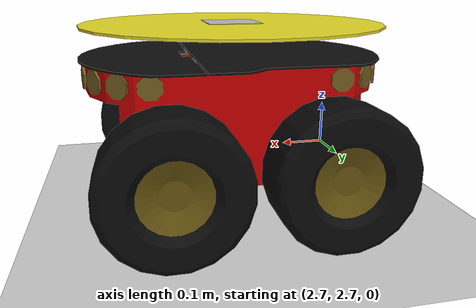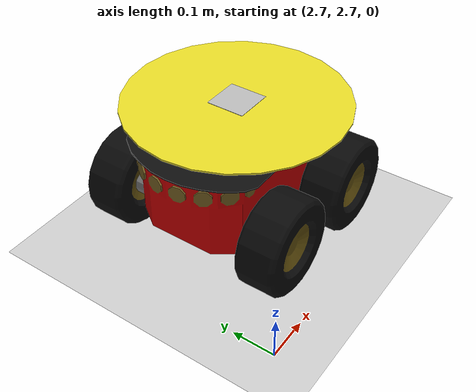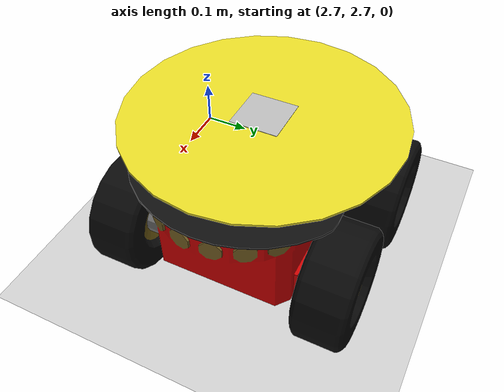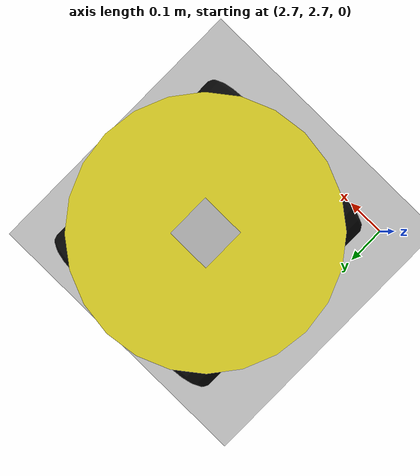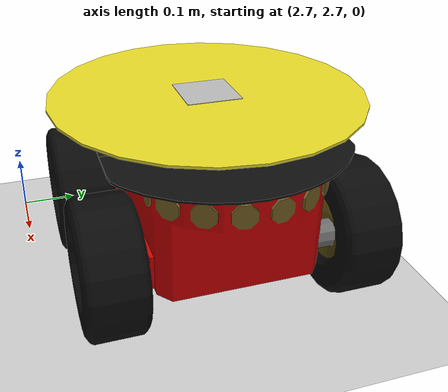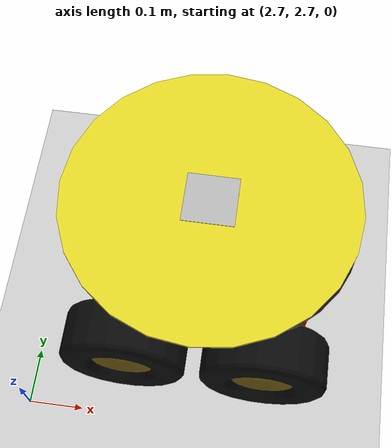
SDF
<?xml version="1.0" ?>
<sdf version="1.6">
  <world name="default">
    <scene>
      <sky>
        <clouds>
          <speed>12</speed>
        </clouds>
      </sky>
    </scene>
    <!-- A global light source -->
    <include>
      <uri>model://sun</uri>
    </include>
    <!-- A ground plane -->
    <include>
      <uri>model://ground_plane</uri>
    </include>
    <include>
      <uri>model://pioneer3at_lander</uri>
      <pose>3 3 0 0 0 0</pose>
    </include>
    <include>
      <uri>model://asphalt_plane</uri>
    </include>
    <physics name='default_physics' default='0' type='ode'>
      <ode>
        <solver>
          <iters>100</iters>
          <sor>1.3</sor>
          <use_dynamic_moi_rescaling>0</use_dynamic_moi_rescaling>
        </solver>
        <constraints>
          <cfm>0</cfm>
          <erp>0.2</erp>
          <contact_max_correcting_vel>100</contact_max_correcting_vel>
          <contact_surface_layer>0.001</contact_surface_layer>
        </constraints>
      </ode>
      <max_step_size>0.001</max_step_size>
      <real_time_factor>1</real_time_factor>
      <real_time_update_rate>1000</real_time_update_rate>
    </physics>
  </world>
</sdf>

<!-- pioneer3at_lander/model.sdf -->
<sdf version="1.4">
  <model name="pioneer3at_lander">

    <include>
      <uri>model://pioneer3at</uri>
      <pose>0 0 0.18 0 0 0</pose>
    </include>

    <include>
      <uri>model://landing_pad</uri>
      <pose>0 0 0.33 0 0 1.57</pose>
    </include>

    <joint name="landing_pad" type="revolute">
      <parent>pioneer3at::chassis</parent>
      <child>landing_pad::landing_pad_link</child>
      <axis>
        <limit>
          <upper>0</upper>
          <lower>0</lower>
        </limit>
      <xyz>0 0 1</xyz>
      </axis>
    </joint>
    <plugin name="skid_steer_drive_controller" filename="libgazebo_ros_skid_steer_drive.so">
      <updateRate>20.0</updateRate>
      <robotNamespace>p3at</robotNamespace>
      <leftFrontJoint>pioneer3at::left_front</leftFrontJoint>
      <rightFrontJoint>pioneer3at::right_front</rightFrontJoint>
      <leftRearJoint>pioneer3at::left_rear</leftRearJoint>
      <rightRearJoint>pioneer3at::right_rear</rightRearJoint>
      <wheelSeparation>0.4</wheelSeparation>
      <wheelDiameter>0.215</wheelDiameter>
      <robotBaseFrame>chassis</robotBaseFrame>
      <torque>500</torque>
      <commandTopic>cmd_vel</commandTopic>
      <odometryTopic>odom</odometryTopic>
      <odometryFrame>odom</odometryFrame>
      <broadcastTF>true</broadcastTF>
    </plugin>

  </model>
</sdf>

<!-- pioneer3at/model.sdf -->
<sdf version="1.5">
  <model name="pioneer3at">
    <pose>0 0 0.180 0 0 0</pose>
    <static>false</static>
    <link name="chassis">
      <inertial>
        <mass>14.0</mass>
        <inertia>
          <ixx>0.147116667</ixx>
          <ixy>0.0</ixy>
          <ixz>0.0</ixz>
          <iyy>0.334951167</iyy>
          <iyz>0.0</iyz>
          <izz>0.3978345</izz>
        </inertia>
      </inertial>
      <collision name="collision">
        <geometry>
          <box>
            <size>0.501 0.300 0.19</size>
          </box>
        </geometry>
      </collision>
      <visual name="visual">
        <geometry>
          <mesh>
            <uri>model://pioneer3at/meshes/chassis.dae</uri>
          </mesh>
        </geometry>
      </visual>
    </link>
    <link name="right_front_wheel">
      <pose>0.125 -0.201 -0.06 1.5707 0 0</pose>

      <inertial>
        <mass>1.5</mass>
        <inertia>
          <ixx>0.005240625</ixx>
          <iyy>0.005240625</iyy>
          <izz>0.009075</izz>
          <ixy>0</ixy>
          <ixz>0</ixz>
          <iyz>0</iyz>
        </inertia>
      </inertial>

      <collision name="collision">
        <geometry>
          <cylinder>
            <radius>0.110</radius>
            <length>0.075</length>
          </cylinder>
        </geometry>
        <surface>
          <friction>
            <ode>
              <mu>1</mu>
              <mu2>1</mu2>
              <slip1>0.5</slip1>
              <slip2>0</slip2>
            </ode>
          </friction>
        </surface>
      </collision>
      <visual name="visual">
        <geometry>
          <mesh>
            <uri>model://pioneer3at/meshes/wheel.dae</uri>
          </mesh>
        </geometry>
      </visual>
    </link>
    <link name="left_front_wheel">
      <pose>0.125 0.201 -0.06 1.5707 0 0</pose>

      <inertial>
        <mass>1.5</mass>
        <inertia>
          <ixx>0.005240625</ixx>
          <iyy>0.005240625</iyy>
          <izz>0.009075</izz>
          <ixy>0</ixy>
          <ixz>0</ixz>
          <iyz>0</iyz>
        </inertia>
      </inertial>

      <collision name="collision">
        <geometry>
          <cylinder>
            <radius>0.110</radius>
            <length>0.075</length>
          </cylinder>
        </geometry>
        <surface>
          <friction>
            <ode>
              <mu>1</mu>
              <mu2>1</mu2>
              <slip1>0.5</slip1>
              <slip2>0</slip2>
            </ode>
          </friction>
        </surface>
      </collision>
      <visual name="visual">
        <geometry>
          <mesh>
            <uri>model://pioneer3at/meshes/wheel.dae</uri>
          </mesh>
        </geometry>
      </visual>
    </link>
    <link name="right_rear_wheel">
      <pose>-0.125 -0.201 -0.06 1.5707 0 0</pose>

      <inertial>
        <mass>1.5</mass>
        <inertia>
          <ixx>0.005240625</ixx>
          <iyy>0.005240625</iyy>
          <izz>0.009075</izz>
          <ixy>0</ixy>
          <ixz>0</ixz>
          <iyz>0</iyz>
        </inertia>
      </inertial>

      <collision name="collision">
        <geometry>
          <cylinder>
            <radius>0.110</radius>
            <length>0.075</length>
          </cylinder>
        </geometry>
        <surface>
          <friction>
            <ode>
              <mu>1</mu>
              <mu2>1</mu2>
              <slip1>0.5</slip1>
              <slip2>0</slip2>
            </ode>
          </friction>
        </surface>
      </collision>
      <visual name="visual">
        <geometry>
          <mesh>
            <uri>model://pioneer3at/meshes/wheel.dae</uri>
          </mesh>
        </geometry>
      </visual>
    </link>
    <link name="left_rear_wheel">
      <pose>-0.125 0.201 -0.06 1.5707 0 0</pose>

      <inertial>
        <mass>1.5</mass>
        <inertia>
          <ixx>0.005240625</ixx>
          <iyy>0.005240625</iyy>
          <izz>0.009075</izz>
          <ixy>0</ixy>
          <ixz>0</ixz>
          <iyz>0</iyz>
        </inertia>
      </inertial>

      <collision name="collision">
        <geometry>
          <cylinder>
            <radius>0.110</radius>
            <length>0.075</length>
          </cylinder>
        </geometry>
        <surface>
          <friction>
            <ode>
              <mu>1</mu>
              <mu2>1</mu2>
              <slip1>0.5</slip1>
              <slip2>0</slip2>
            </ode>
          </friction>
        </surface>
      </collision>
      <visual name="visual">
        <geometry>
          <mesh>
            <uri>model://pioneer3at/meshes/wheel.dae</uri>
          </mesh>
        </geometry>
      </visual>
    </link>
    <joint type="revolute" name="right_front">
      <pose>0 0 0 0 0 0</pose>
      <child>right_front_wheel</child>
      <parent>chassis</parent>
      <axis>
        <xyz>0 1 0</xyz>
        <use_parent_model_frame>true</use_parent_model_frame>
      </axis>
    </joint>
    <joint type="revolute" name="right_rear">
      <pose>0 0 0 0 0 0</pose>
      <child>right_rear_wheel</child>
      <parent>chassis</parent>
      <axis>
        <xyz>0 1 0</xyz>
        <use_parent_model_frame>true</use_parent_model_frame>
      </axis>
    </joint>
    <joint type="revolute" name="left_front">
      <pose>0 0 0 0 0 0</pose>
      <child>left_front_wheel</child>
      <parent>chassis</parent>
      <axis>
        <xyz>0 1 0</xyz>
        <use_parent_model_frame>true</use_parent_model_frame>
      </axis>
    </joint>
    <joint type="revolute" name="left_rear">
      <pose>0 0 0 0 0 0</pose>
      <child>left_rear_wheel</child>
      <parent>chassis</parent>
      <axis>
        <xyz>0 1 0</xyz>
        <use_parent_model_frame>true</use_parent_model_frame>
      </axis>
    </joint>
    <plugin name="skid_steer_drive_controller" filename="libgazebo_ros_skid_steer_drive.so">
      <updateRate>1000.0</updateRate>
      <robotNamespace>p3at</robotNamespace>
      <leftFrontJoint>pioneer3at::left_front</leftFrontJoint>
      <rightFrontJoint>pioneer3at::right_front</rightFrontJoint>
      <leftRearJoint>pioneer3at::left_rear</leftRearJoint>
      <rightRearJoint>pioneer3at::right_rear</rightRearJoint>
      <wheelSeparation>0.4</wheelSeparation>
      <wheelDiameter>0.215</wheelDiameter>
      <robotBaseFrame>chassis</robotBaseFrame>
      <torque>500</torque>
      <commandTopic>cmd_vel</commandTopic>
      <odometryTopic>odom</odometryTopic>
      <odometryFrame>odom</odometryFrame>
      <broadcastTF>false</broadcastTF>
    </plugin>

  </model>
</sdf>

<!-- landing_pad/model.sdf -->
<sdf version='1.5'>
  <model name='landing_pad'>
    <link name='landing_pad_link'>
      <pose frame=''>0 0 0 0 -0 0</pose>
      <gravity>1</gravity>
      <self_collide>0</self_collide>
      <kinematic>0</kinematic>
      <visual name='main_circle'>
        <pose frame=''>0 0 0 0 -0 0</pose>
        <geometry>
          <cylinder>
            <radius>0.255</radius>
            <length>0.004</length>
          </cylinder>
        </geometry>
        <material>
          <lighting>1</lighting>
          <script>
            <uri>file://media/materials/scripts/gazebo.material</uri>
            <name>Gazebo/Yellow</name>
          </script>
          <ambient>1 1 0 1</ambient>
          <diffuse>1 1 0 1</diffuse>
          <specular>0.1 0.1 0.1 1.0</specular>
          <emissive>0 0 0 0</emissive>
          <shader type='vertex'>
            <normal_map>__default__</normal_map>
          </shader>
        </material>
        <cast_shadows>1</cast_shadows>
        <transparency>0</transparency>
      </visual>
	<visual name='visual'>
	    <pose frame=''>0 0 0.0025 0 0 1.57</pose>
		<geometry>
		<box>
		<size>0.09 0.09 0.001</size>
		</box>
		</geometry>
		<material>
		<script>
		<uri>model://landing_pad/materials/scripts</uri>
		<uri>model://landing_pad/materials/textures</uri>
		<name>at0/Diffuse</name>
		</script>
		</material>
	</visual>
      <!--Apparently theres a bug with polyline and GTS with Gazebo6?
       ---The GTS library is found at compile time... but still no-->
      <collision name='collision'>
        <laser_retro>0</laser_retro>
        <max_contacts>10</max_contacts>
        <pose frame=''>0 0 0 0 -0 0</pose>
        <geometry>
          <cylinder>
            <radius>0.255</radius>
            <length>0.004</length>
          </cylinder>
        </geometry>
        <surface>
          <friction>
            <ode>
              <mu>1</mu>
              <mu2>1</mu2>
              <fdir1>0 0 0</fdir1>
              <slip1>0</slip1>
              <slip2>0</slip2>
            </ode>
          </friction>
        </surface>
      </collision>
    </link>
    <static>1</static>
    <allow_auto_disable>1</allow_auto_disable>
  </model>
</sdf>
